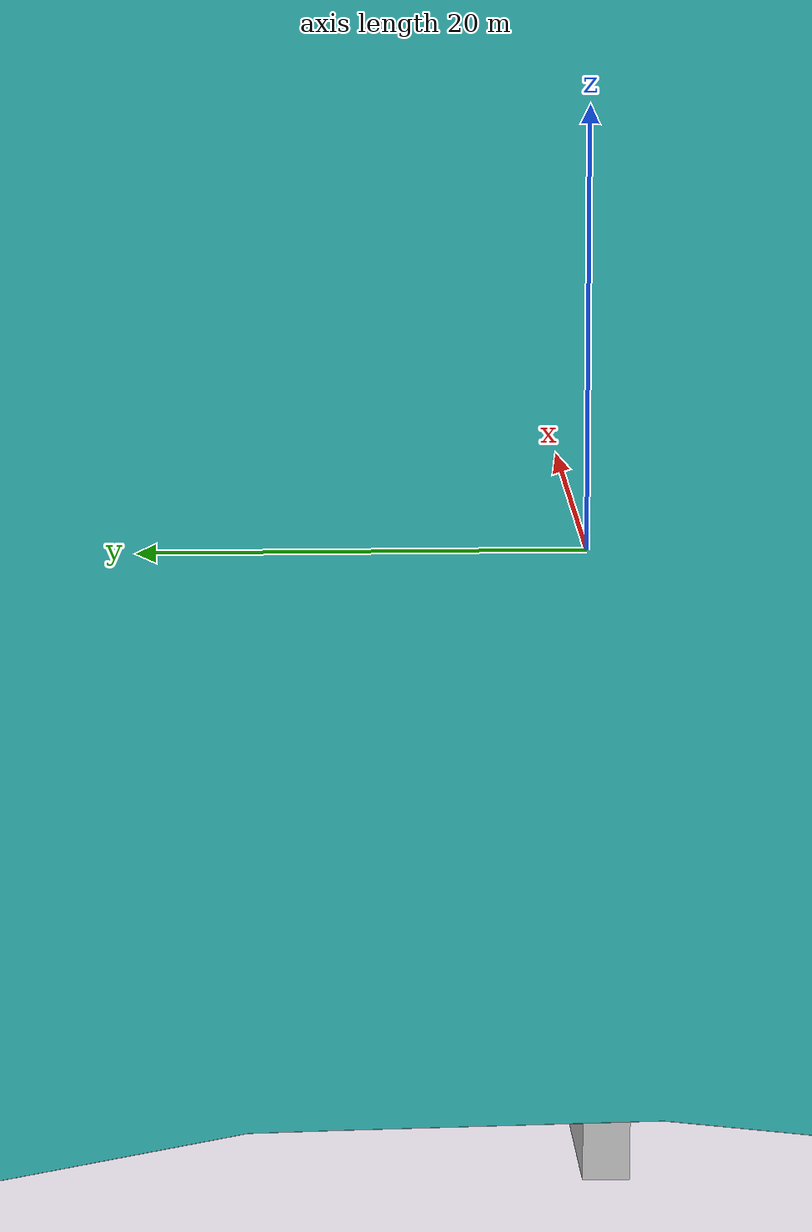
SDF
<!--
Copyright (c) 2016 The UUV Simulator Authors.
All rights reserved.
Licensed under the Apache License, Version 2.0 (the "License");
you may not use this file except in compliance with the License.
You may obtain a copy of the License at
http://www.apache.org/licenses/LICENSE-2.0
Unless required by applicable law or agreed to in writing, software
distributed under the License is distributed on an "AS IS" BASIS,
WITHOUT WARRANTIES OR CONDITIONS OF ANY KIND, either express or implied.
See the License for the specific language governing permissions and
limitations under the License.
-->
<?xml version="1.0" ?>
<sdf version="1.4">

<model name="pool">
    <static>true</static>
    <link name="pool_link">
        <visual name="pool_bottom">
            <cast_shadows>false</cast_shadows>
            <pose>0 0 -4 1.57079632679 0 0</pose>
            <geometry>
                <mesh><uri>model://pool/meshes/pool.obj</uri><scale>1 1 1</scale></mesh>
            </geometry>
            <material>
              <script>
                <uri>file://Media/materials/scripts/sand.material</uri>
                <name>UUVSimulator/SandAndStones</name>
              </script>
            </material>
        </visual>

        <collision name="pool_bottom">
            <pose>0 0 -4 1.57079632679 0 0</pose>
            <geometry>
                <mesh><uri>model://pool/meshes/pool.obj</uri><scale>1 1 1</scale></mesh>
            </geometry>
        </collision>

        <visual name="surface">
            <pose>0 0 0 0 0 0</pose>
            <geometry>
                <mesh><uri>model://lake/meshes/WaterSurface.dae</uri><scale>1 1 1</scale></mesh>
            </geometry>
            <material>
              <script>
                <uri>file://Media/materials/scripts/water.material</uri>
                <name>UUVSimulator/StaticTurquoiseWater</name>
              </script>
            </material>
        </visual>
    </link>
</model>

</sdf>
